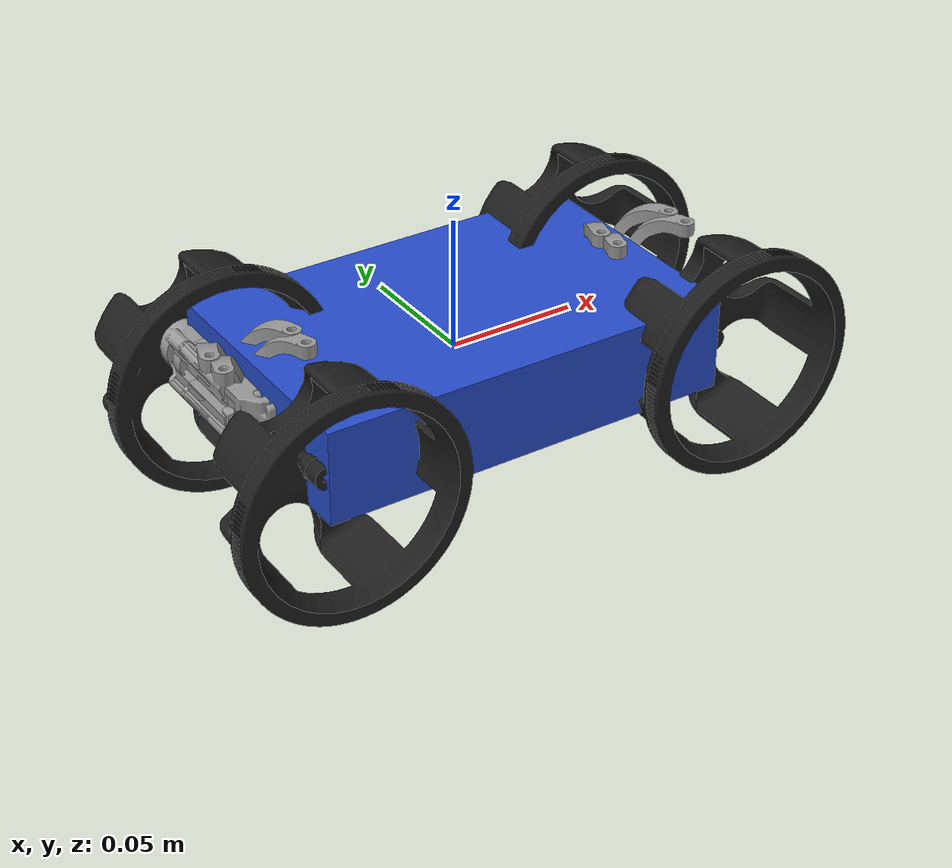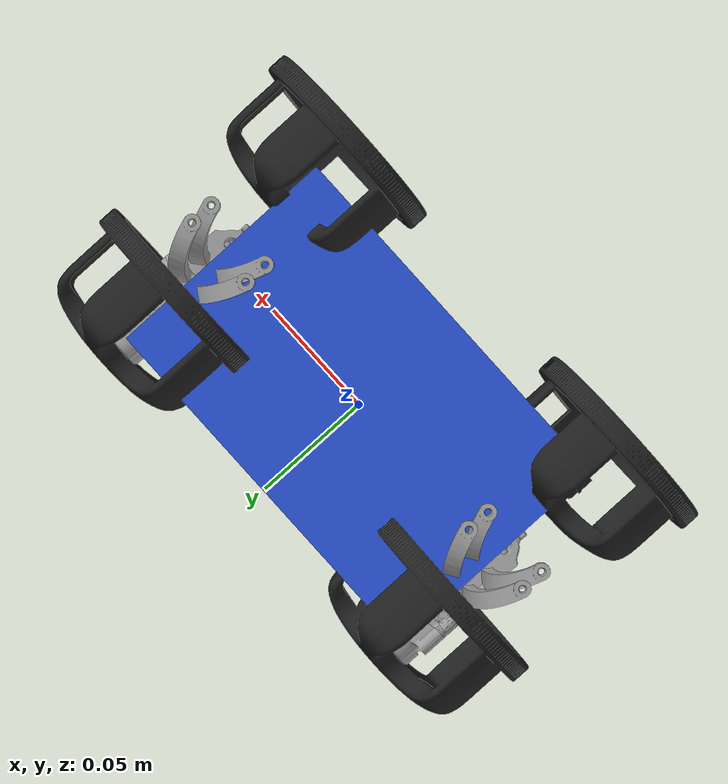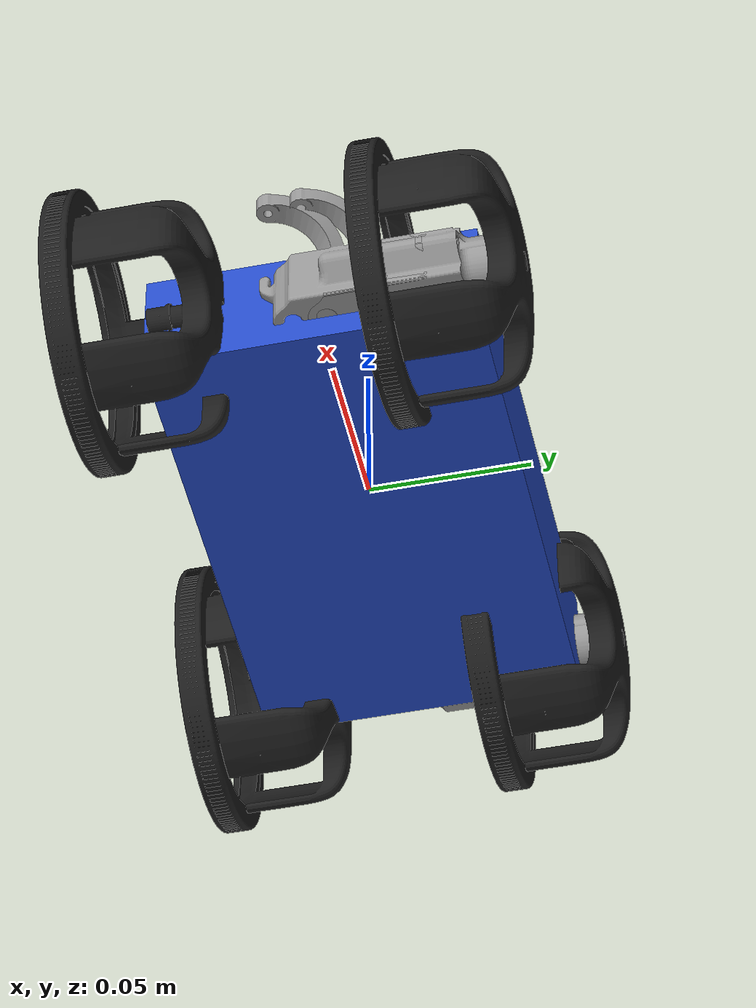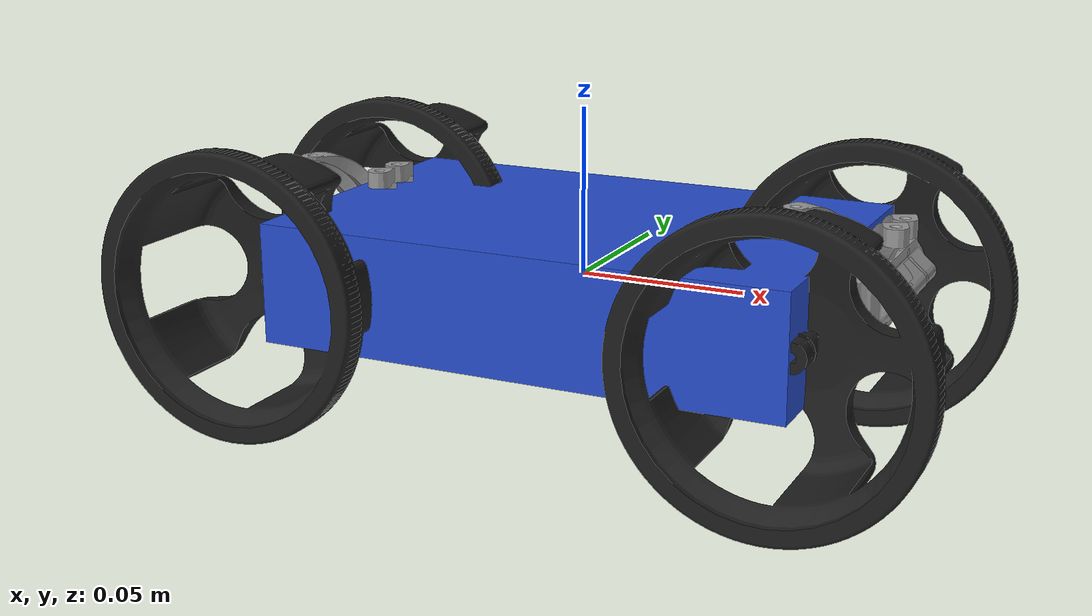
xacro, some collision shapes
<?xml version = "1.0"?>
<robot xmlns:xacro = "https://www.ros.org/wiki/xacro" name = "edu_rover">

    <gazebo>
        <plugin name = "gazebo_ros_control" filename = "libgazebo_ros_control.so">
            <robotNamespace>/edu_rover</robotNamespace>
        </plugin>
    </gazebo>

    <!--Parameter-->

    <xacro:property name = "base_box_num" value = "0.16"/>
    <xacro:property name = "knuckle_joint_x" value = "0.08"/>
    <xacro:property name = "knuckle_joint_y" value = "0.005"/>

    <!--MACROS-->
    <xacro:macro name = "knuckle" params = "number">
        <link name = "knuckle_${number}_link">
            <inertial>
                <origin xyz = "0 0 0" rpy = "0 0 0"/>
                <mass value = "0.018649"/>
                <inertia ixx = "4.507e-06" ixy = "0.0" ixz = "0.0" iyy = "1.2433e-06" iyz = "0.0" izz = "4.507e-06"/>
            </inertial>

            <collision>
                <origin xyz = "0 0.025 0" rpy = "0 0 0"/>
                <geometry>
                    <box size = "0.02 0.05 0.02" />
                </geometry>
            </collision>

            <visual>
                <origin xyz = "0 0 0" rpy = "1.5708 0 0"/>
                <geometry>
                    <mesh filename="package://my_edu_rover_description/models/knuckle.STL"/>
                </geometry>
            </visual>
        </link>

        <gazebo reference = "knuckle_${number}_link">
            <kp>100000.0</kp>
            <kd>100000.0</kd>
            <mu1>10.0</mu1>
            <mu2>10.0</mu2>
            <material>Gazebo/Grey</material>
        </gazebo>
    </xacro:macro>

    <xacro:macro name = "wheel" params = "number">
        <link name = "wheel_${number}_link">
            <inertial>
                <origin xyz = "0 0 0" rpy = "0 0 0"/>
                <mass value = "0.038593"/>
                <inertia ixx = "1.5759e-05" ixy = "0.0" ixz = "0.0" iyy = "1.5759e-05" iyz = "0.0" izz = "3.0874e-05"/>
            </inertial>

            <collision>
                <origin xyz = "0 0 0" rpy = "1.5708 0 0"/>
                <geometry>
                    <cylinder radius = "0.04" length = "0.01"/>
                </geometry>
            </collision>

            <visual>
                <origin xyz = "0 0 0" rpy = "0 0 0"/>
                <geometry>
                    <mesh filename="package://my_edu_rover_description/models/wheel.STL"/>
                </geometry>
            </visual>
        </link>

        <gazebo reference="wheel_${number}_link">
            <kp>100000.0</kp>
            <kd>100000.0</kd>
            <mu1>10.0</mu1>
            <mu2>10.0</mu2>
            <material>Gazebo/Black</material>
        </gazebo>
    </xacro:macro>

    <xacro:macro name = "right_wheels_joint" params = "number">
        <joint name = "wheel_${number}_joint" type = "continuous">
            <parent link = "knuckle_${number}_link"/>
            <child link = "wheel_${number}_link"/>
            <origin xyz = "0 0.05 0" rpy = "0 0 0" />
            <limit effort="0.177" velocity="28.3" />
            <axis xyz = "0 1 0"/>
        </joint>
    </xacro:macro>

    <xacro:macro name = "left_wheels_joint" params = "number">
        <joint name = "wheel_${number}_joint" type = "continuous">
            <parent link = "knuckle_${number}_link"/>
            <child link = "wheel_${number}_link"/>
            <origin xyz = "0 -0.05 0" rpy = "0 0 0" />
            <limit effort="0.177" velocity="28.3" />
            <axis xyz = "0 1 0"/>
        </joint>
    </xacro:macro>

    <xacro:macro name = "knuckle_transmission" params = "knuckle_num tran_num">
        <transmission name="tran${tran_num}">
            <type>transmission_interface/SimpleTransmission</type>
            <joint name="knuckle_${knuckle_num}_joint">
                <hardwareInterface>hardware_interface/EffortJointInterface</hardwareInterface>
            </joint>
            <actuator name="servo_${knuckle_num}">
                <hardwareInterface>hardware_interface/EffortJointInterface</hardwareInterface>
                <mechanicalReduction>1</mechanicalReduction>
            </actuator>
        </transmission>
    </xacro:macro>

    <xacro:macro name = "wheel_transmission" params = "wheel_num tran_num">
        <transmission name="tran${tran_num}">
            <type>transmission_interface/SimpleTransmission</type>
            <joint name="wheel_${wheel_num}_joint">
                <hardwareInterface>hardware_interface/EffortJointInterface</hardwareInterface>
            </joint>
            <actuator name="motor_${wheel_num}">
                <hardwareInterface>hardware_interface/EffortJointInterface</hardwareInterface>
                <mechanicalReduction>1</mechanicalReduction>
            </actuator>
        </transmission>
    </xacro:macro>

    <!--Link Definitions-->

    <link name = "dummy_link">
        <collision>
            <origin xyz = "0 0 0" rpy = "0 0 0"/>
            <geometry>
                <box size = "0.15 0.1 0.036"/>
            </geometry>
        </collision>
    </link>

    <link name="base_link">
        <inertial>
            <origin xyz = "0 0 0" rpy = "0 0 0" />
            <mass value = "0.36082"/>
            <inertia ixx = "0.00034" ixy = "0.0" ixz = "0.0" iyy = "0.00081" iyz = "0.0" izz = "0.00107"/>
        </inertial>

        <collision>
            <origin xyz = "0 0 0" rpy = "0 0 0" />
            <geometry>
                <box size = "${base_box_num} 0.1 0.036"/>
            </geometry>
        </collision>

        <visual>
            <origin xyz ="0.011 -0.13 0" rpy = "0 0 4.72984"/>
            <geometry>
                <mesh filename="package://edu_rover/models/base.STL"/>
            </geometry>
        </visual>
    </link>

    <joint name = "dummy_joint" type = "fixed">
        <parent link = "dummy_link"/>
        <child link = "base_link"/>
    </joint>

    <gazebo reference="base_link">
        <kp>100000.0</kp>
        <kd>100000.0</kd>
        <mu1>10.0</mu1>
        <mu2>10.0</mu2>
        <material>Gazebo/Blue</material>
    </gazebo>

<!-- left_front ()-[III]-()
                   [III]
                   [III]
                ()-[III]-()
-->

    <xacro:knuckle number = "1"/>

    <joint name = "knuckle_1_joint" type = "revolute">
        <parent link = "base_link"/>
        <child link = "knuckle_1_link"/>
        <origin xyz = "${knuckle_joint_x} ${knuckle_joint_y} 0" rpy = "0 0 0 "/>
        <limit lower = "-1.5708" upper = "0.52" effort = "0.1" velocity = "1.05"/>
        <axis xyz = "0 0 1"/>
    </joint>

    <xacro:knuckle_transmission knuckle_num = "1" tran_num = "1"/>

    <xacro:wheel number = "1"/>
    <xacro:left_wheels_joint number = "1"/>
    <xacro:wheel_transmission wheel_num = "1" tran_num = "2"/>

    <!-- ()-[III]-()right_front
            [III]
            [III]
         ()-[III]-()
-->

    <xacro:knuckle number = "2"/>

    <joint name = "knuckle_2_joint" type = "revolute">
        <parent link = "base_link"/>
        <child link = "knuckle_2_link"/>
        <origin xyz = "${knuckle_joint_x} -${knuckle_joint_y} 0" rpy = "0 0 0 "/>
        <limit lower = "-0.52" upper = "1.5708" effort = "0.1" velocity = "1.05"/>
        <axis xyz = "0 0 1"/>
    </joint>

    <xacro:knuckle_transmission knuckle_num = "2" tran_num = "3"/>

    <xacro:wheel number = "2"/>
    <xacro:right_wheels_joint number = "2"/>
    <xacro:wheel_transmission wheel_num = "2" tran_num = "4"/>

    <!-- ()-[III]-()
            [III]
            [III]
         ()-[III]-()right_back
-->

    <xacro:knuckle number = "3"/>

    <joint name = "knuckle_3_joint" type = "revolute">
        <parent link = "base_link"/>
        <child link = "knuckle_3_link"/>
        <origin xyz = "-${knuckle_joint_x} -${knuckle_joint_y} 0" rpy = "0 0 0"/>
        <limit lower = "-1.5708" upper = "0.52" effort = "0.1" velocity = "1.05"/>
        <axis xyz = "0 0 1"/>
    </joint>

    <xacro:knuckle_transmission knuckle_num = "3" tran_num = "5"/>

    <xacro:wheel number = "3"/>
    <xacro:right_wheels_joint number = "3"/>
    <xacro:wheel_transmission wheel_num = "3" tran_num = "6"/>

    <!--        ()-[III]-()
                   [III]
                   [III]
      left_back ()-[III]-()
-->

    <xacro:knuckle number = "4"/>

     <joint name = "knuckle_4_joint" type = "revolute">
        <parent link = "base_link"/>
        <child link = "knuckle_4_link"/>
        <origin xyz = "-${knuckle_joint_x} ${knuckle_joint_y} 0" rpy = "0 0 0"/>
        <limit lower = "-0.52" upper = "1.5708" effort = "0.1" velocity = "1.05"/>
        <axis xyz = "0 0 1"/>
    </joint>

    <xacro:knuckle_transmission knuckle_num = "4" tran_num = "7"/>

    <xacro:wheel number = "4"/>
    <xacro:left_wheels_joint number = "4"/>
    <xacro:wheel_transmission wheel_num = "4" tran_num = "8"/>

    <gazebo>
        <plugin name = "gazebo_ros_imu_controller" filename = "libgazebo_ros_imu.so">
            <robotNamespace>/edu_rover</robotNamespace>
            <topicName>imu/data</topicName>
            <serviceName>imu/service</serviceName>
            <bodyName>base_link</bodyName>
            <gaussianNoise>0</gaussianNoise>
            <rpyOffsets>0 0 0</rpyOffsets>
            <updateRate>100</updateRate>
            <alwaysOn>true</alwaysOn>
            <gaussianNoise>0</gaussianNoise>
        </plugin>
    </gazebo>

</robot>
